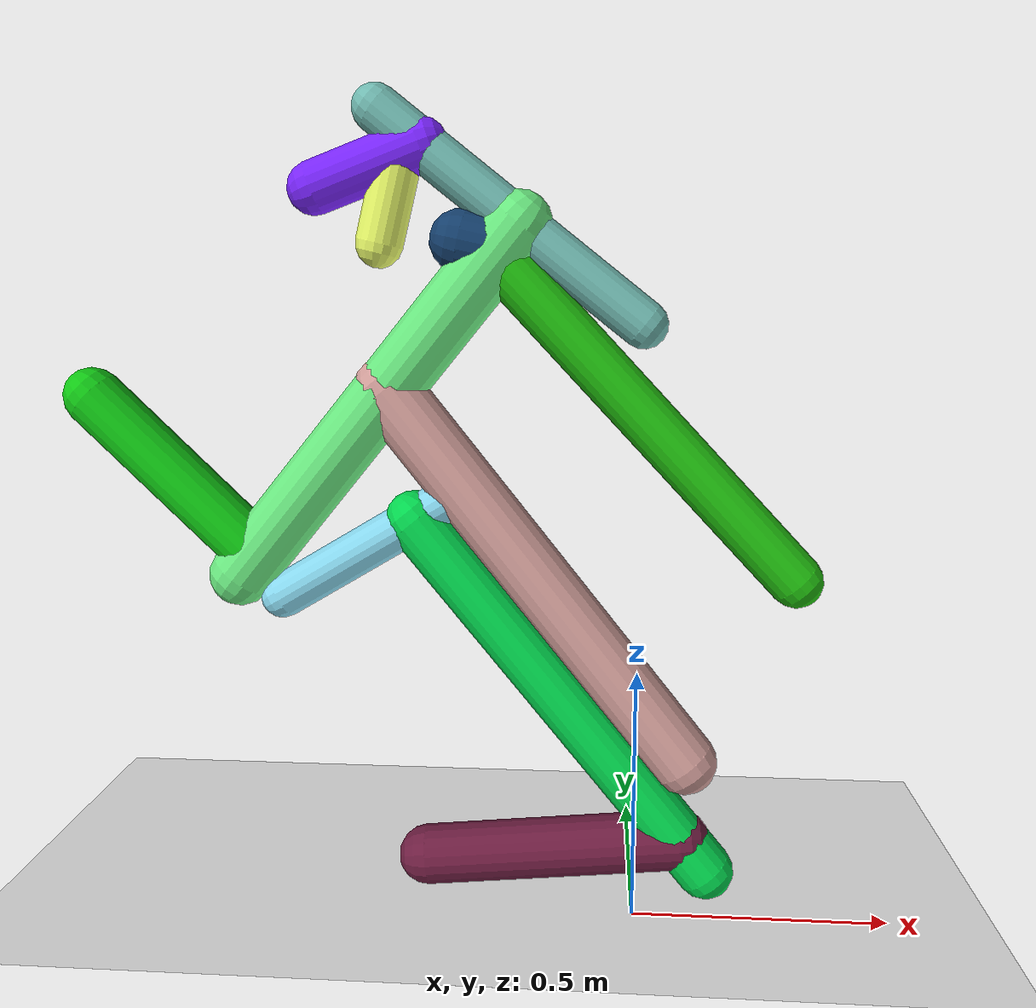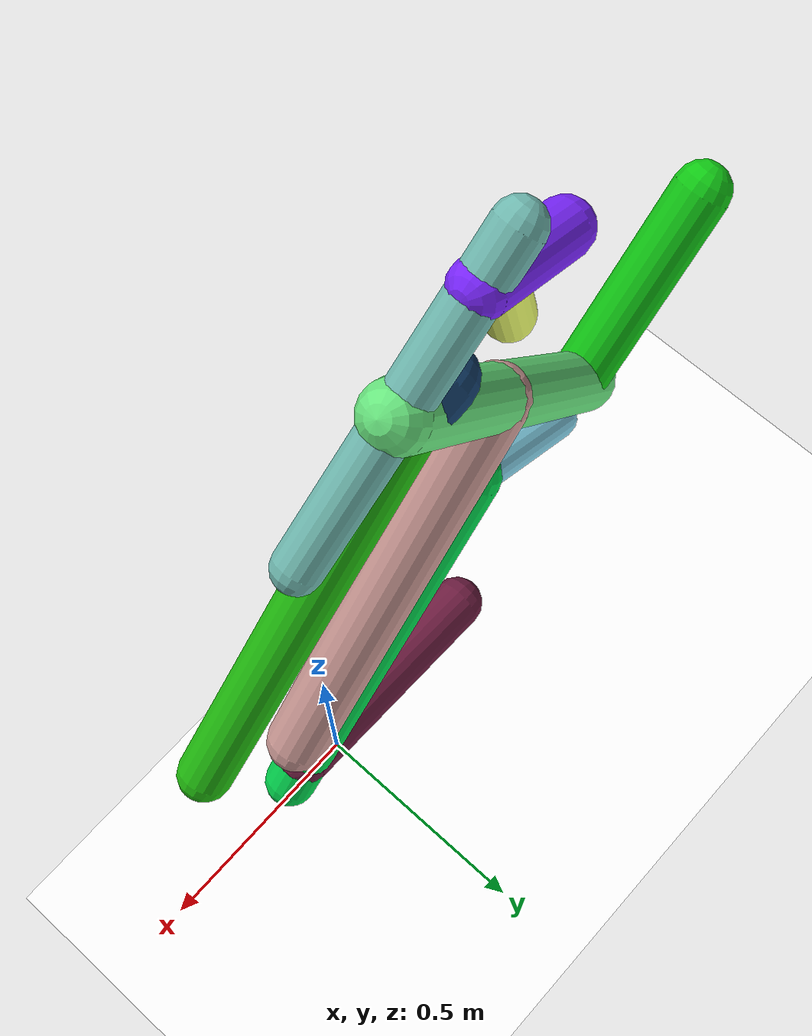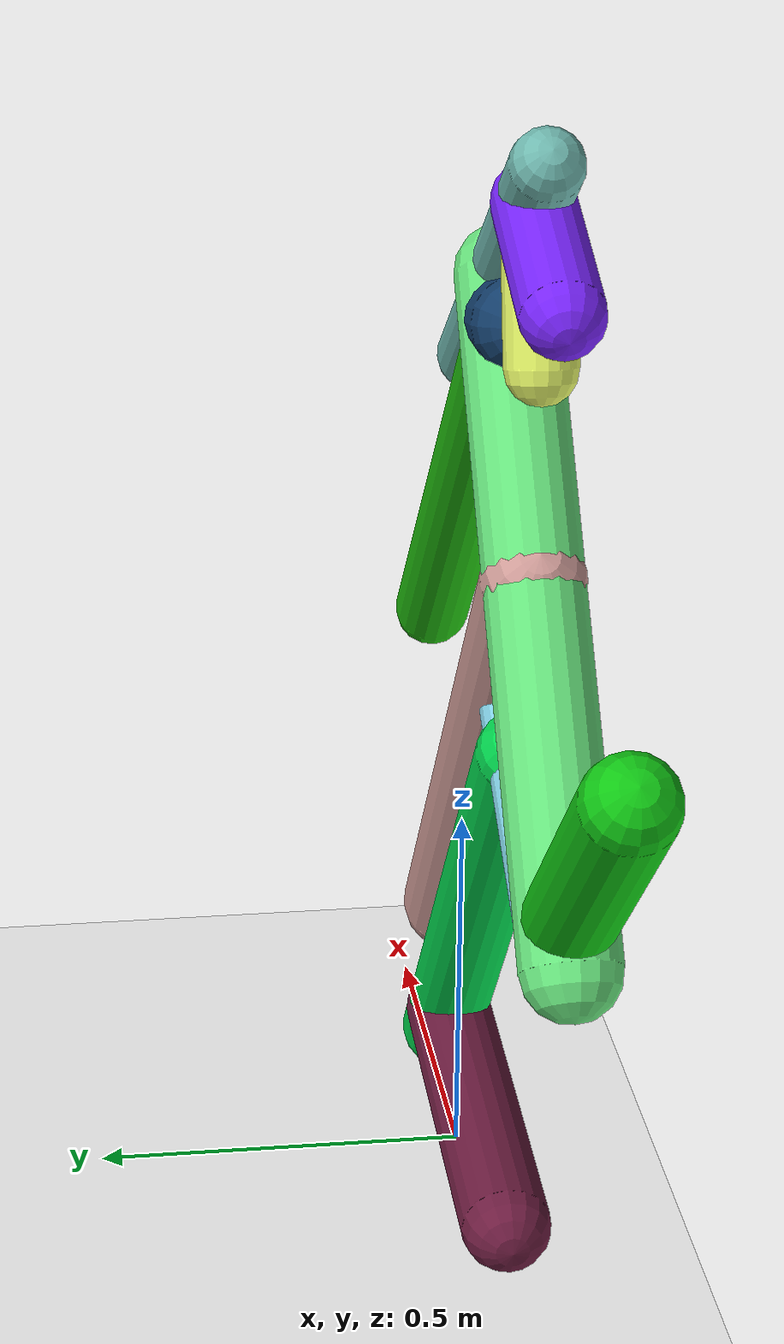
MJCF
<mujoco model="morphology">
  <option timestep="0.01"/>
  <default>
    <default class="/"/>
    <default class="0/"/>
    <default class="0/1/"/>
    <default class="0/1/2/"/>
    <default class="0/1/3/"/>
    <default class="0/1/3/4/"/>
    <default class="0/1/5/"/>
    <default class="0/1/5/6/"/>
    <default class="0/1/5/6/7/"/>
    <default class="0/1/5/6/7/8/"/>
    <default class="0/9/"/>
    <default class="0/9/10/"/>
  </default>
  <asset>
    <texture name="texplane" type="2d" builtin="checker" rgb1="0.10000000000000001 0.20000000000000001 0.29999999999999999" rgb2="0.20000000000000001 0.29999999999999999 0.40000000000000002" width="300" height="300"/>
    <material name="MatPlane" class="/" texture="texplane" texrepeat="20 20" specular="1" shininess="1" reflectance="0.5"/>
  </asset>
  <worldbody>
    <light name="//unnamed_light_0" class="/" directional="true" pos="0 0 1.5" dir="0 0 -1.3" cutoff="100" exponent="1" diffuse="1 1 1" specular="0.10000000000000001 0.10000000000000001 0.10000000000000001"/>
    <geom name="ground" class="/" type="plane" size="15 15 0.5" material="MatPlane" rgba="1 1 1 1"/>
    <site name="body" class="/" size="9.9999999999999995e-07 9.9999999999999995e-07 9.9999999999999995e-07" pos="0 0 1.162085509300232"/>
    <body pos="0 0 1.162085509300232" name="0/">
      <joint name="0/rootx/" class="/" type="slide" axis="1 0 0" limited="false" stiffness="0" armature="0" damping="0"/>
      <joint name="0/rootz/" class="/" type="slide" axis="0 0 1" limited="false" stiffness="0" armature="0" damping="0"/>
      <joint name="0/rooty/" class="/" type="hinge" axis="0 1 0" limited="false" stiffness="0" armature="0" damping="0"/>
      <geom name="0/geom" class="0/" type="capsule" contype="1" conaffinity="1" condim="3" size="0.044213626129993057" rgba="0.43611769171869363 0.72291899142580163 0.68715069064126455 1" friction="0.59999999999999998 0.10000000000000001 0.10000000000000001" fromto="0 0 0 -0.4863334777366311 0 0.38181447527541024"/>
      <site name="0/end0" class="0/" size="0.0050000000000000001" pos="-0.4863334777366311 0 0.38181447527541024"/>
      <site name="0/attach1" class="0/" size="9.9999999999999995e-07 9.9999999999999995e-07 9.9999999999999995e-07" pos="-0.2286960978926651 0 0.17954651409317282"/>
      <body pos="-0.2286960978926651 0 0.17954651409317282" name="0/1/">
        <joint name="0/1/joint/" class="0/" type="hinge" axis="0 1 0" limited="true" range="-38.246310311540078 38.246310311540078"/>
        <geom name="0/1/geom" class="0/1/" type="capsule" contype="1" conaffinity="1" condim="3" size="0.061633629603623286" rgba="0.40808767231598353 0.89652572163585709 0.49359283205904858 1" friction="0.59999999999999998 0.10000000000000001 0.10000000000000001" fromto="0 0 0 -0.5394062059058321 0 -0.65797688318609737"/>
        <site name="0/1/end1" class="0/1/" size="0.0050000000000000001" pos="-0.5394062059058321 0 -0.65797688318609737"/>
        <site name="0/1/attach2" class="0/1/" size="9.9999999999999995e-07 9.9999999999999995e-07 9.9999999999999995e-07" pos="-0.50536355074524908 0 -0.61645107222453432"/>
        <body pos="-0.50536355074524908 0 -0.61645107222453432" name="0/1/2/">
          <joint name="0/1/2/joint/" class="0/1/" type="hinge" axis="0 1 0" limited="true" range="-59.629684333171326 59.629684333171326"/>
          <geom name="0/1/2/geom" class="0/1/2/" type="capsule" contype="1" conaffinity="1" condim="3" size="0.056386735925334566" rgba="0.067178125633119756 0.78494187199011356 0.082319937139273547 1" friction="0.59999999999999998 0.10000000000000001 0.10000000000000001" fromto="0 0 0 -0.30774170414302604 0 0.29995908734921173"/>
          <site name="0/1/2/end2" class="0/1/2/" size="0.0050000000000000001" pos="-0.30774170414302604 0 0.29995908734921173"/>
        </body>
        <site name="0/1/attach3" class="0/1/" size="9.9999999999999995e-07 9.9999999999999995e-07 9.9999999999999995e-07" pos="-0.03719192836601614 0 -0.045367348091327024"/>
        <body pos="-0.03719192836601614 0 -0.045367348091327024" name="0/1/3/">
          <joint name="0/1/3/joint/" class="0/1/" type="hinge" axis="0 1 0" limited="true" range="-61.024093706052582 61.024093706052582"/>
          <geom name="0/1/3/geom" class="0/1/3/" type="capsule" contype="1" conaffinity="1" condim="3" size="0.057741098106566885" rgba="0.075439985106505181 0.24413362490618584 0.42177563625869541 1" friction="0.59999999999999998 0.10000000000000001 0.10000000000000001" fromto="0 0 0 -0.069250124053930051 0 0.01553781449488012"/>
          <site name="0/1/3/end3" class="0/1/3/" size="0.0050000000000000001" pos="-0.069250124053930051 0 0.01553781449488012"/>
          <site name="0/1/3/attach4" class="0/1/3/" size="9.9999999999999995e-07 9.9999999999999995e-07 9.9999999999999995e-07" pos="-0.016904947527017562 0 0.0037930031506647481"/>
          <body pos="-0.016904947527017562 0 0.0037930031506647481" name="0/1/3/4/">
            <joint name="0/1/3/4/joint/" class="0/1/3/" type="hinge" axis="0 1 0" limited="true" range="-38.554357080257823 38.554357080257823"/>
            <geom name="0/1/3/4/geom" class="0/1/3/4/" type="capsule" contype="1" conaffinity="1" condim="3" size="0.051079293495797866" rgba="0.12925743649375099 0.74007739851924448 0.059654641393121044 1" friction="0.59999999999999998 0.10000000000000001 0.10000000000000001" fromto="0 0 0 0.57515577496199466 0 -0.61088787587882565"/>
            <site name="0/1/3/4/end4" class="0/1/3/4/" size="0.0050000000000000001" pos="0.57515577496199466 0 -0.61088787587882565"/>
          </body>
        </body>
        <site name="0/1/attach5" class="0/1/" size="9.9999999999999995e-07 9.9999999999999995e-07 9.9999999999999995e-07" pos="-0.24626816046623809 0 -0.30040209934076523"/>
        <body pos="-0.24626816046623809 0 -0.30040209934076523" name="0/1/5/">
          <joint name="0/1/5/joint/" class="0/1/" type="hinge" axis="0 1 0" limited="true" range="-60.917140854640266 60.917140854640266"/>
          <geom name="0/1/5/geom" class="0/1/5/" type="capsule" contype="1" conaffinity="1" condim="3" size="0.064066215507002977" rgba="0.81053972324756274 0.61211902544544583 0.59587553177024533 1" friction="0.59999999999999998 0.10000000000000001 0.10000000000000001" fromto="0 0 0 0.56913214151053082 0 -0.71589687064657404"/>
          <site name="0/1/5/end5" class="0/1/5/" size="0.0050000000000000001" pos="0.56913214151053082 0 -0.71589687064657404"/>
          <site name="0/1/5/attach6" class="0/1/5/" size="9.9999999999999995e-07 9.9999999999999995e-07 9.9999999999999995e-07" pos="0.14780960788296188 0 -0.18592595289744612"/>
          <body pos="0.14780960788296188 0 -0.18592595289744612" name="0/1/5/6/">
            <joint name="0/1/5/6/joint/" class="0/1/5/" type="hinge" axis="0 1 0" limited="true" range="-31.970463175578221 31.970463175578221"/>
            <geom name="0/1/5/6/geom" class="0/1/5/6/" type="capsule" contype="1" conaffinity="1" condim="3" size="0.042892673717612191" rgba="0.52521016658361952 0.83577594686702605 0.92333151637185484 1" friction="0.59999999999999998 0.10000000000000001 0.10000000000000001" fromto="0 0 0 -0.35918298365266704 0 -0.21365071266820257"/>
            <site name="0/1/5/6/end6" class="0/1/5/6/" size="0.0050000000000000001" pos="-0.35918298365266704 0 -0.21365071266820257"/>
            <site name="0/1/5/6/attach7" class="0/1/5/6/" size="9.9999999999999995e-07 9.9999999999999995e-07 9.9999999999999995e-07" pos="-0.09942316688396953 0 -0.059139300655263655"/>
            <body pos="-0.09942316688396953 0 -0.059139300655263655" name="0/1/5/6/7/">
              <joint name="0/1/5/6/7/joint/" class="0/1/5/6/" type="hinge" axis="0 1 0" limited="true" range="-57.270832031409377 57.270832031409377"/>
              <geom name="0/1/5/6/7/geom" class="0/1/5/6/7/" type="capsule" contype="1" conaffinity="1" condim="3" size="0.056293252388309289" rgba="0.009066488197405298 0.83942967735515683 0.30665381599917241 1" friction="0.59999999999999998 0.10000000000000001 0.10000000000000001" fromto="0 0 0 0.56718696171004601 0 -0.69616462246408495"/>
              <site name="0/1/5/6/7/end7" class="0/1/5/6/7/" size="0.0050000000000000001" pos="0.56718696171004601 0 -0.69616462246408495"/>
              <site name="0/1/5/6/7/attach8" class="0/1/5/6/7/" size="9.9999999999999995e-07 9.9999999999999995e-07 9.9999999999999995e-07" pos="0.51674121907032922 0 -0.6342475761451466"/>
              <body pos="0.51674121907032922 0 -0.6342475761451466" name="0/1/5/6/7/8/">
                <joint name="0/1/5/6/7/8/joint/" class="0/1/5/6/7/" type="hinge" axis="0 1 0" limited="true" range="-69.016583082958491 69.016583082958491"/>
                <geom name="0/1/5/6/7/8/geom" class="0/1/5/6/7/8/" type="capsule" contype="1" conaffinity="1" condim="3" size="0.058851881836423134" rgba="0.43119832598813379 0.11600784896396021 0.25645078459450565 1" friction="0.59999999999999998 0.10000000000000001 0.10000000000000001" fromto="0 0 0 -0.49793368598555876 0 -0.049739186846126104"/>
                <site name="0/1/5/6/7/8/end8" class="0/1/5/6/7/8/" size="0.0050000000000000001" pos="-0.49793368598555876 0 -0.049739186846126104"/>
              </body>
            </body>
          </body>
        </body>
      </body>
      <site name="0/attach9" class="0/" size="9.9999999999999995e-07 9.9999999999999995e-07 9.9999999999999995e-07" pos="-0.40505284685090087 0 0.31800204439748575"/>
      <body pos="-0.40505284685090087 0 0.31800204439748575" name="0/9/">
        <geom name="0/9/geom" class="0/9/" type="capsule" contype="1" conaffinity="1" condim="3" size="0.049675860435743707" rgba="0.47073961311195889 0.14146023949259656 0.98381701817091138 1" friction="0.59999999999999998 0.10000000000000001 0.10000000000000001" fromto="0 0 0 -0.19734702573960961 0 -0.073575670143367855"/>
        <site name="0/9/end9" class="0/9/" size="0.0050000000000000001" pos="-0.19734702573960961 0 -0.073575670143367855"/>
        <site name="0/9/attach10" class="0/9/" size="9.9999999999999995e-07 9.9999999999999995e-07 9.9999999999999995e-07" pos="-0.040845666898188103 0 -0.015228237178766778"/>
        <body pos="-0.040845666898188103 0 -0.015228237178766778" name="0/9/10/">
          <geom name="0/9/10/geom" class="0/9/10/" type="capsule" contype="1" conaffinity="1" condim="3" size="0.044487556284884364" rgba="0.8957004158764611 0.96318014556198395 0.40561987354483542 1" friction="0.59999999999999998 0.10000000000000001 0.10000000000000001" fromto="0 0 0 -0.038852927243991253 0 -0.15771347592576324"/>
          <site name="0/9/10/end10" class="0/9/10/" size="0.0050000000000000001" pos="-0.038852927243991253 0 -0.15771347592576324"/>
        </body>
      </body>
      <camera name="0/side" class="0/" mode="trackcom" pos="0.40000000000000002 -4 0.20000000000000001" quat="0.70699999999999996 0.70699999999999996 0 0"/>
    </body>
  </worldbody>
  <actuator>
    <motor name="0/1/motor" class="0/1/" ctrllimited="true" ctrlrange="-1 1" gear="75" joint="0/1/joint/"/>
    <motor name="0/1/2/motor" class="0/1/2/" ctrllimited="true" ctrlrange="-1 1" gear="58" joint="0/1/2/joint/"/>
    <motor name="0/1/3/motor" class="0/1/3/" ctrllimited="true" ctrlrange="-1 1" gear="66" joint="0/1/3/joint/"/>
    <motor name="0/1/3/4/motor" class="0/1/3/4/" ctrllimited="true" ctrlrange="-1 1" gear="76" joint="0/1/3/4/joint/"/>
    <motor name="0/1/5/motor" class="0/1/5/" ctrllimited="true" ctrlrange="-1 1" gear="51" joint="0/1/5/joint/"/>
    <motor name="0/1/5/6/motor" class="0/1/5/6/" ctrllimited="true" ctrlrange="-1 1" gear="68" joint="0/1/5/6/joint/"/>
    <motor name="0/1/5/6/7/motor" class="0/1/5/6/7/" ctrllimited="true" ctrlrange="-1 1" gear="59" joint="0/1/5/6/7/joint/"/>
    <motor name="0/1/5/6/7/8/motor" class="0/1/5/6/7/8/" ctrllimited="true" ctrlrange="-1 1" gear="57" joint="0/1/5/6/7/8/joint/"/>
  </actuator>
  <sensor>
    <subtreelinvel name="velocity" body="0/"/>
  </sensor>
</mujoco>
